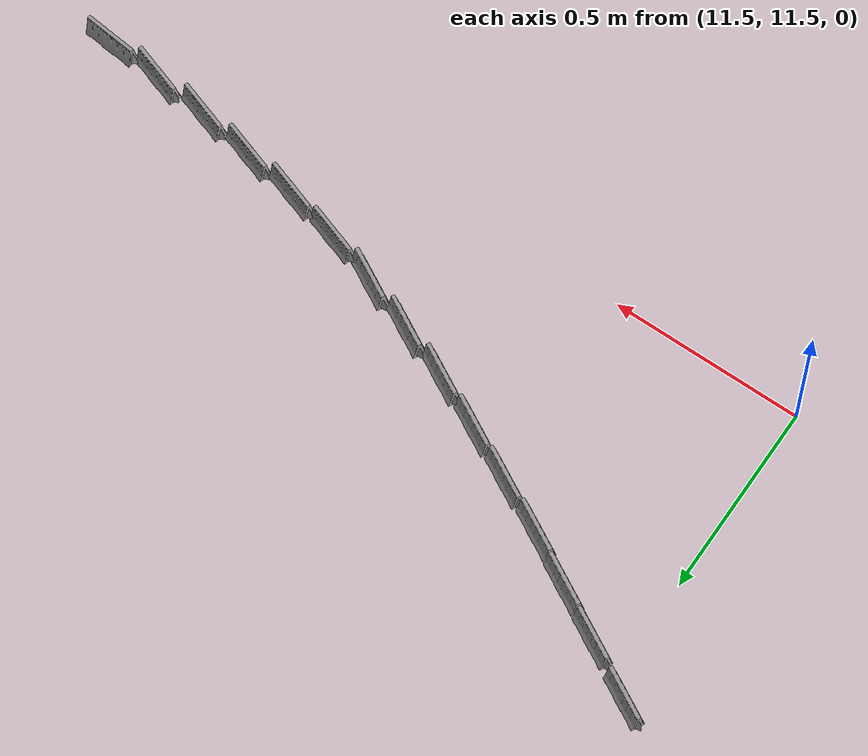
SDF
<sdf version="1.7">
 <world name="bfmc_official">
  <model name="separator_clone_16_clone_6_clone_2">
   <link name="link_0">
    <visual name="visual">
     <geometry><mesh><uri>model://separator/meshes/separator.dae</uri><scale>1 1 1</scale></mesh></geometry>
     <material>
      <lighting>1</lighting>
      <script><uri>file://media/materials/scripts/gazebo.material</uri><name>Gazebo/Gray</name></script>
      <shader type="vertex"><normal_map>__default__</normal_map></shader>
      <ambient>0.3 0.3 0.3 1</ambient>
      <diffuse>0.7 0.7 0.7 1</diffuse>
      <specular>0.01 0.01 0.01 1</specular>
      <emissive>0 0 0 1</emissive>
     </material>
    </visual>
   </link>
   <static>1</static>
   <pose>11.4538 12.304 0.044594 0 0 -2.07717</pose>
  </model>
  <model name="separator_clone_16_clone_6_clone_3">
   <link name="link_0">
    <visual name="visual">
     <geometry><mesh><uri>model://separator/meshes/separator.dae</uri><scale>1 1 1</scale></mesh></geometry>
     <material>
      <lighting>1</lighting>
      <script><uri>file://media/materials/scripts/gazebo.material</uri><name>Gazebo/Gray</name></script>
      <shader type="vertex"><normal_map>__default__</normal_map></shader>
      <ambient>0.3 0.3 0.3 1</ambient>
      <diffuse>0.7 0.7 0.7 1</diffuse>
      <specular>0.01 0.01 0.01 1</specular>
      <emissive>0 0 0 1</emissive>
     </material>
    </visual>
   </link>
   <static>1</static>
   <pose>11.5922 12.2249 0.044594 0 0 -2.07717</pose>
  </model>
  <model name="separator_clone_16_clone_6_clone_4">
   <link name="link_0">
    <visual name="visual">
     <geometry><mesh><uri>model://separator/meshes/separator.dae</uri><scale>1 1 1</scale></mesh></geometry>
     <material>
      <lighting>1</lighting>
      <script><uri>file://media/materials/scripts/gazebo.material</uri><name>Gazebo/Gray</name></script>
      <shader type="vertex"><normal_map>__default__</normal_map></shader>
      <ambient>0.3 0.3 0.3 1</ambient>
      <diffuse>0.7 0.7 0.7 1</diffuse>
      <specular>0.01 0.01 0.01 1</specular>
      <emissive>0 0 0 1</emissive>
     </material>
    </visual>
   </link>
   <static>1</static>
   <pose>11.7183 12.1533 0.044594 0 0 -2.07717</pose>
  </model>
  <model name="separator_clone_16_clone_6_clone_5">
   <link name="link_0">
    <visual name="visual">
     <geometry><mesh><uri>model://separator/meshes/separator.dae</uri><scale>1 1 1</scale></mesh></geometry>
     <material>
      <lighting>1</lighting>
      <script><uri>file://media/materials/scripts/gazebo.material</uri><name>Gazebo/Gray</name></script>
      <shader type="vertex"><normal_map>__default__</normal_map></shader>
      <ambient>0.3 0.3 0.3 1</ambient>
      <diffuse>0.7 0.7 0.7 1</diffuse>
      <specular>0.01 0.01 0.01 1</specular>
      <emissive>0 0 0 1</emissive>
     </material>
    </visual>
   </link>
   <static>1</static>
   <pose>11.8441 12.0808 0.044594 0 0 -2.07717</pose>
  </model>
  <model name="separator_clone_16_clone_6_clone_6">
   <link name="link_0">
    <visual name="visual">
     <geometry><mesh><uri>model://separator/meshes/separator.dae</uri><scale>1 1 1</scale></mesh></geometry>
     <material>
      <lighting>1</lighting>
      <script><uri>file://media/materials/scripts/gazebo.material</uri><name>Gazebo/Gray</name></script>
      <shader type="vertex"><normal_map>__default__</normal_map></shader>
      <ambient>0.3 0.3 0.3 1</ambient>
      <diffuse>0.7 0.7 0.7 1</diffuse>
      <specular>0.01 0.01 0.01 1</specular>
      <emissive>0 0 0 1</emissive>
     </material>
    </visual>
   </link>
   <static>1</static>
   <pose>11.9755 12.015 0.044594 0 0 -2.07717</pose>
  </model>
  <model name="separator_clone_16_clone_6_clone_7">
   <link name="link_0">
    <visual name="visual">
     <geometry><mesh><uri>model://separator/meshes/separator.dae</uri><scale>1 1 1</scale></mesh></geometry>
     <material>
      <lighting>1</lighting>
      <script><uri>file://media/materials/scripts/gazebo.material</uri><name>Gazebo/Gray</name></script>
      <shader type="vertex"><normal_map>__default__</normal_map></shader>
      <ambient>0.3 0.3 0.3 1</ambient>
      <diffuse>0.7 0.7 0.7 1</diffuse>
      <specular>0.01 0.01 0.01 1</specular>
      <emissive>0 0 0 1</emissive>
     </material>
    </visual>
   </link>
   <static>1</static>
   <pose>12.1063 11.9495 0.044594 0 0 -2.07717</pose>
  </model>
  <model name="separator_clone_16_clone_6_clone_8">
   <link name="link_0">
    <visual name="visual">
     <geometry><mesh><uri>model://separator/meshes/separator.dae</uri><scale>1 1 1</scale></mesh></geometry>
     <material>
      <lighting>1</lighting>
      <script><uri>file://media/materials/scripts/gazebo.material</uri><name>Gazebo/Gray</name></script>
      <shader type="vertex"><normal_map>__default__</normal_map></shader>
      <ambient>0.3 0.3 0.3 1</ambient>
      <diffuse>0.7 0.7 0.7 1</diffuse>
      <specular>0.01 0.01 0.01 1</specular>
      <emissive>0 0 0 1</emissive>
     </material>
    </visual>
   </link>
   <static>1</static>
   <pose>12.2398 11.8868 0.044594 0 0 -2.07717</pose>
  </model>
  <model name="separator_clone_16_clone_6_clone_9">
   <link name="link_0">
    <visual name="visual">
     <geometry><mesh><uri>model://separator/meshes/separator.dae</uri><scale>1 1 1</scale></mesh></geometry>
     <material>
      <lighting>1</lighting>
      <script><uri>file://media/materials/scripts/gazebo.material</uri><name>Gazebo/Gray</name></script>
      <shader type="vertex"><normal_map>__default__</normal_map></shader>
      <ambient>0.3 0.3 0.3 1</ambient>
      <diffuse>0.7 0.7 0.7 1</diffuse>
      <specular>0.01 0.01 0.01 1</specular>
      <emissive>0 0 0 1</emissive>
     </material>
    </visual>
   </link>
   <static>1</static>
   <pose>12.3756 11.8343 0.044594 0 0 -2.07717</pose>
  </model>
  <model name="separator_clone_16_clone_6_clone_10">
   <link name="link_0">
    <visual name="visual">
     <geometry><mesh><uri>model://separator/meshes/separator.dae</uri><scale>1 1 1</scale></mesh></geometry>
     <material>
      <lighting>1</lighting>
      <script><uri>file://media/materials/scripts/gazebo.material</uri><name>Gazebo/Gray</name></script>
      <shader type="vertex"><normal_map>__default__</normal_map></shader>
      <ambient>0.3 0.3 0.3 1</ambient>
      <diffuse>0.7 0.7 0.7 1</diffuse>
      <specular>0.01 0.01 0.01 1</specular>
      <emissive>0 0 0 1</emissive>
     </material>
    </visual>
   </link>
   <static>1</static>
   <pose>12.5143 11.7827 0.044594 0 0 -2.07717</pose>
  </model>
  <model name="separator_clone_16_clone_6_clone_10_clone">
   <link name="link_0">
    <visual name="visual">
     <geometry><mesh><uri>model://separator/meshes/separator.dae</uri><scale>1 1 1</scale></mesh></geometry>
     <material>
      <lighting>1</lighting>
      <script><uri>file://media/materials/scripts/gazebo.material</uri><name>Gazebo/Gray</name></script>
      <shader type="vertex"><normal_map>__default__</normal_map></shader>
      <ambient>0.3 0.3 0.3 1</ambient>
      <diffuse>0.7 0.7 0.7 1</diffuse>
      <specular>0.01 0.01 0.01 1</specular>
      <emissive>0 0 0 1</emissive>
     </material>
    </visual>
   </link>
   <static>1</static>
   <pose>12.6519 11.7391 0.044594 0 0 -1.89838</pose>
  </model>
  <model name="separator_clone_16_clone_6_clone_10_clone_0">
   <link name="link_0">
    <visual name="visual">
     <geometry><mesh><uri>model://separator/meshes/separator.dae</uri><scale>1 1 1</scale></mesh></geometry>
     <material>
      <lighting>1</lighting>
      <script><uri>file://media/materials/scripts/gazebo.material</uri><name>Gazebo/Gray</name></script>
      <shader type="vertex"><normal_map>__default__</normal_map></shader>
      <ambient>0.3 0.3 0.3 1</ambient>
      <diffuse>0.7 0.7 0.7 1</diffuse>
      <specular>0.01 0.01 0.01 1</specular>
      <emissive>0 0 0 1</emissive>
     </material>
    </visual>
   </link>
   <static>1</static>
   <pose>12.7952 11.7027 0.044594 0 0 -1.89838</pose>
  </model>
  <model name="separator_clone_16_clone_6_clone_10_clone_1">
   <link name="link_0">
    <visual name="visual">
     <geometry><mesh><uri>model://separator/meshes/separator.dae</uri><scale>1 1 1</scale></mesh></geometry>
     <material>
      <lighting>1</lighting>
      <script><uri>file://media/materials/scripts/gazebo.material</uri><name>Gazebo/Gray</name></script>
      <shader type="vertex"><normal_map>__default__</normal_map></shader>
      <ambient>0.3 0.3 0.3 1</ambient>
      <diffuse>0.7 0.7 0.7 1</diffuse>
      <specular>0.01 0.01 0.01 1</specular>
      <emissive>0 0 0 1</emissive>
     </material>
    </visual>
   </link>
   <static>1</static>
   <pose>12.9387 11.6778 0.044594 0 0 -1.89838</pose>
  </model>
  <model name="separator_clone_16_clone_6_clone_10_clone_2">
   <link name="link_0">
    <visual name="visual">
     <geometry><mesh><uri>model://separator/meshes/separator.dae</uri><scale>1 1 1</scale></mesh></geometry>
     <material>
      <lighting>1</lighting>
      <script><uri>file://media/materials/scripts/gazebo.material</uri><name>Gazebo/Gray</name></script>
      <shader type="vertex"><normal_map>__default__</normal_map></shader>
      <ambient>0.3 0.3 0.3 1</ambient>
      <diffuse>0.7 0.7 0.7 1</diffuse>
      <specular>0.01 0.01 0.01 1</specular>
      <emissive>0 0 0 1</emissive>
     </material>
    </visual>
   </link>
   <static>1</static>
   <pose>13.086 11.6527 0.044594 0 0 -1.89838</pose>
  </model>
  <model name="separator_clone_16_clone_6_clone_10_clone_3">
   <link name="link_0">
    <visual name="visual">
     <geometry><mesh><uri>model://separator/meshes/separator.dae</uri><scale>1 1 1</scale></mesh></geometry>
     <material>
      <lighting>1</lighting>
      <script><uri>file://media/materials/scripts/gazebo.material</uri><name>Gazebo/Gray</name></script>
      <shader type="vertex"><normal_map>__default__</normal_map></shader>
      <ambient>0.3 0.3 0.3 1</ambient>
      <diffuse>0.7 0.7 0.7 1</diffuse>
      <specular>0.01 0.01 0.01 1</specular>
      <emissive>0 0 0 1</emissive>
     </material>
    </visual>
   </link>
   <static>1</static>
   <pose>13.2328 11.6354 0.044594 0 0 -1.89838</pose>
  </model>
  <model name="separator_clone_16_clone_6_clone_10_clone_3_clone">
   <link name="link_0">
    <visual name="visual">
     <geometry><mesh><uri>model://separator/meshes/separator.dae</uri><scale>1 1 1</scale></mesh></geometry>
     <material>
      <lighting>1</lighting>
      <script><uri>file://media/materials/scripts/gazebo.material</uri><name>Gazebo/Gray</name></script>
      <shader type="vertex"><normal_map>__default__</normal_map></shader>
      <ambient>0.3 0.3 0.3 1</ambient>
      <diffuse>0.7 0.7 0.7 1</diffuse>
      <specular>0.01 0.01 0.01 1</specular>
      <emissive>0 0 0 1</emissive>
     </material>
    </visual>
   </link>
   <static>1</static>
   <pose>13.3779 11.6247 0.044594 0 0 -1.67631</pose>
  </model>
 </world>
</sdf>
